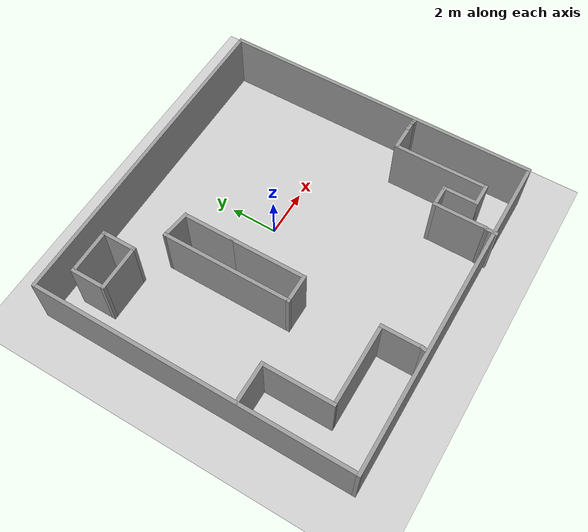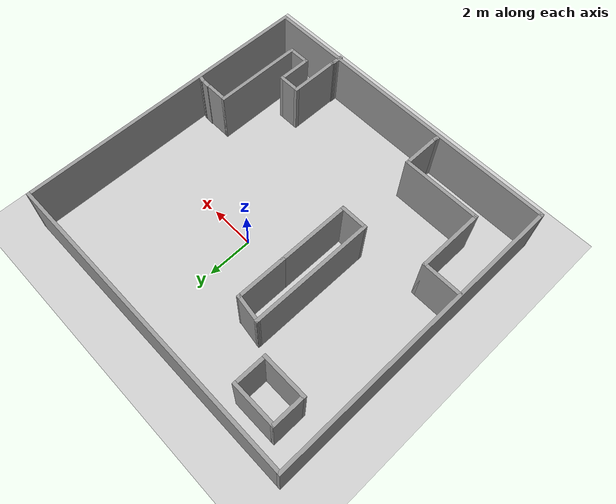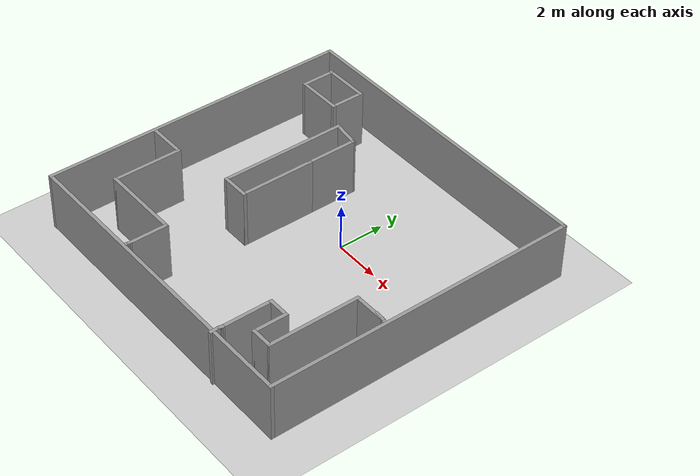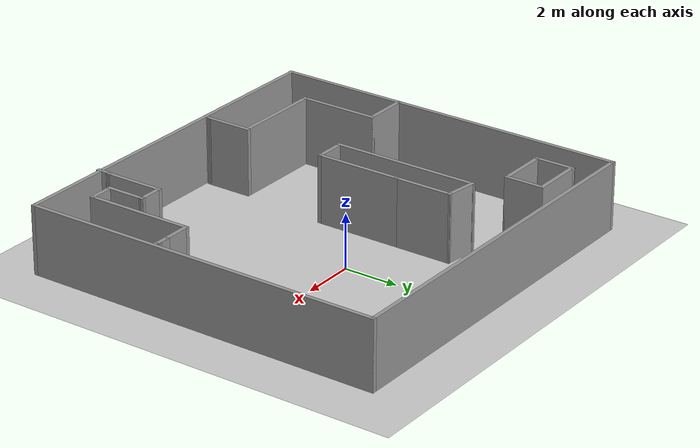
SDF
<sdf version="1.7">
 <world name="default">
  <light name="sun" type="directional">
   <pose>0 0 10 0 -0 0</pose>
   <diffuse>0.8 0.8 0.8 1</diffuse>
   <specular>0.2 0.2 0.2 1</specular>
   <attenuation>
    <range>1000</range>
    <constant>0.9</constant>
    <linear>0.01</linear>
    <quadratic>0.001</quadratic>
   </attenuation>
   <direction>-0.5 0.1 -0.9</direction>
   <spot><inner_angle>0</inner_angle><outer_angle>0</outer_angle><falloff>0</falloff></spot>
  </light>
  <model name="ground_plane">
   <static>1</static>
   <link name="link">
    <collision name="collision">
     <geometry><plane><normal>0 0 1</normal><size>100 100</size></plane></geometry>
     <surface><friction><ode><mu>100</mu><mu2>50</mu2></ode></friction></surface>
    </collision>
    <visual name="visual">
     <cast_shadows>0</cast_shadows>
     <geometry><plane><normal>0 0 1</normal><size>100 100</size></plane></geometry>
     <material>
      <script><uri>file://media/materials/scripts/gazebo.material</uri><name>Gazebo/Grey</name></script>
     </material>
    </visual>
   </link>
  </model>
  <gravity>0 0 -9.8</gravity>
  <magnetic_field>6e-06 2.3e-05 -4.2e-05</magnetic_field>
  <atmosphere type="adiabatic"/>
  <physics type="ode">
   <max_step_size>0.001</max_step_size>
   <real_time_factor>1</real_time_factor>
   <real_time_update_rate>1000</real_time_update_rate>
  </physics>
  <scene><ambient>0.4 0.4 0.4 1</ambient><background>0.7 0.7 0.7 1</background><shadows>1</shadows></scene>
  <audio><device>default</device></audio>
  <spherical_coordinates>
   <surface_model>EARTH_WGS84</surface_model>
   <latitude_deg>0</latitude_deg>
   <longitude_deg>0</longitude_deg>
   <elevation>0</elevation>
   <heading_deg>0</heading_deg>
  </spherical_coordinates>
  <model name="model">
   <pose>-0.715286 -1.27046 0 0 -0 0</pose>
   <link name="Wall_20">
    <collision name="Wall_20_Collision">
     <geometry><box><size>14 0.15 2.5</size></box></geometry>
     <pose>0 0 1.25 0 -0 0</pose>
    </collision>
    <visual name="Wall_20_Visual">
     <pose>0 0 1.25 0 -0 0</pose>
     <geometry><box><size>14 0.15 2.5</size></box></geometry>
     <material>
      <script><uri>file://media/materials/scripts/gazebo.material</uri><name>Gazebo/Grey</name></script>
      <ambient>1 1 1 1</ambient>
     </material>
     <meta><layer>0</layer></meta>
    </visual>
    <pose>0 6.71182 0 0 -0 0</pose>
   </link>
   <link name="Wall_21">
    <collision name="Wall_21_Collision">
     <geometry><box><size>13.5 0.15 2.5</size></box></geometry>
     <pose>0 0 1.25 0 -0 0</pose>
    </collision>
    <visual name="Wall_21_Visual">
     <pose>0 0 1.25 0 -0 0</pose>
     <geometry><box><size>13.5 0.15 2.5</size></box></geometry>
     <material>
      <script><uri>file://media/materials/scripts/gazebo.material</uri><name>Gazebo/Grey</name></script>
      <ambient>1 1 1 1</ambient>
     </material>
     <meta><layer>0</layer></meta>
    </visual>
    <pose>6.925 0.036821 0 0 -0 -1.5708</pose>
   </link>
   <link name="Wall_22">
    <collision name="Wall_22_Collision">
     <geometry><box><size>14 0.15 2.5</size></box></geometry>
     <pose>0 0 1.25 0 -0 0</pose>
    </collision>
    <visual name="Wall_22_Visual">
     <pose>0 0 1.25 0 -0 0</pose>
     <geometry><box><size>14 0.15 2.5</size></box></geometry>
     <material>
      <script><uri>file://media/materials/scripts/gazebo.material</uri><name>Gazebo/Grey</name></script>
      <ambient>1 1 1 1</ambient>
     </material>
     <meta><layer>0</layer></meta>
    </visual>
    <pose>0 -6.63818 0 0 -0 3.14159</pose>
   </link>
   <link name="Wall_23">
    <collision name="Wall_23_Collision">
     <geometry><box><size>13.5 0.15 2.5</size></box></geometry>
     <pose>0 0 1.25 0 -0 0</pose>
    </collision>
    <visual name="Wall_23_Visual">
     <pose>0 0 1.25 0 -0 0</pose>
     <geometry><box><size>13.5 0.15 2.5</size></box></geometry>
     <material>
      <script><uri>file://media/materials/scripts/gazebo.material</uri><name>Gazebo/Grey</name></script>
      <ambient>1 1 1 1</ambient>
     </material>
     <meta><layer>0</layer></meta>
    </visual>
    <pose>-6.925 0.036821 0 0 -0 1.5708</pose>
   </link>
   <link name="Wall_25">
    <collision name="Wall_25_Collision">
     <geometry><box><size>1.5 0.15 2.5</size></box></geometry>
     <pose>0 0 1.25 0 -0 0</pose>
    </collision>
    <visual name="Wall_25_Visual">
     <pose>0 0 1.25 0 -0 0</pose>
     <geometry><box><size>1.5 0.15 2.5</size></box></geometry>
     <material>
      <script><uri>file://media/materials/scripts/gazebo.material</uri><name>Gazebo/Grey</name></script>
      <ambient>1 1 1 1</ambient>
     </material>
     <meta><layer>0</layer></meta>
    </visual>
    <pose>-3.87343 5.18881 0 0 -0 -1.5708</pose>
   </link>
   <link name="Wall_26">
    <collision name="Wall_26_Collision">
     <geometry><box><size>2 0.15 2.5</size></box></geometry>
     <pose>0 0 1.25 0 -0 0</pose>
    </collision>
    <visual name="Wall_26_Visual">
     <pose>0 0 1.25 0 -0 0</pose>
     <geometry><box><size>2 0.15 2.5</size></box></geometry>
     <material>
      <script><uri>file://media/materials/scripts/gazebo.material</uri><name>Gazebo/Grey</name></script>
      <ambient>1 1 1 1</ambient>
     </material>
     <meta><layer>0</layer></meta>
    </visual>
    <pose>-4.79843 4.51382 0 0 -0 3.14159</pose>
   </link>
   <link name="Wall_27">
    <collision name="Wall_27_Collision">
     <geometry><box><size>1.5 0.15 2.5</size></box></geometry>
     <pose>0 0 1.25 0 -0 0</pose>
    </collision>
    <visual name="Wall_27_Visual">
     <pose>0 0 1.25 0 -0 0</pose>
     <geometry><box><size>1.5 0.15 2.5</size></box></geometry>
     <material>
      <script><uri>file://media/materials/scripts/gazebo.material</uri><name>Gazebo/Grey</name></script>
      <ambient>1 1 1 1</ambient>
     </material>
     <meta><layer>0</layer></meta>
    </visual>
    <pose>-5.72343 5.18881 0 0 -0 1.5708</pose>
   </link>
   <link name="Wall_28">
    <collision name="Wall_28_Collision">
     <geometry><box><size>2 0.15 2.5</size></box></geometry>
     <pose>0 0 1.25 0 -0 0</pose>
    </collision>
    <visual name="Wall_28_Visual">
     <pose>0 0 1.25 0 -0 0</pose>
     <geometry><box><size>2 0.15 2.5</size></box></geometry>
     <material>
      <script><uri>file://media/materials/scripts/gazebo.material</uri><name>Gazebo/Grey</name></script>
      <ambient>1 1 1 1</ambient>
     </material>
     <meta><layer>0</layer></meta>
    </visual>
    <pose>-4.79843 5.86381 0 0 -0 0</pose>
   </link>
   <link name="Wall_30">
    <collision name="Wall_30_Collision">
     <geometry><box><size>1.75 0.15 2.5</size></box></geometry>
     <pose>0 0 1.25 0 -0 0</pose>
    </collision>
    <visual name="Wall_30_Visual">
     <pose>0 0 1.25 0 -0 0</pose>
     <geometry><box><size>1.75 0.15 2.5</size></box></geometry>
     <material>
      <script><uri>file://media/materials/scripts/gazebo.material</uri><name>Gazebo/Grey</name></script>
      <ambient>1 1 1 1</ambient>
     </material>
     <meta><layer>0</layer></meta>
    </visual>
    <pose>-6.0883 -1.95023 0 0 -0 0</pose>
   </link>
   <link name="Wall_31">
    <collision name="Wall_31_Collision">
     <geometry><box><size>3 0.15 2.5</size></box></geometry>
     <pose>0 0 1.25 0 -0 0</pose>
    </collision>
    <visual name="Wall_31_Visual">
     <pose>0 0 1.25 0 -0 0</pose>
     <geometry><box><size>3 0.15 2.5</size></box></geometry>
     <material>
      <script><uri>file://media/materials/scripts/gazebo.material</uri><name>Gazebo/Grey</name></script>
      <ambient>1 1 1 1</ambient>
     </material>
     <meta><layer>0</layer></meta>
    </visual>
    <pose>-5.2883 -3.37523 0 0 -0 -1.5708</pose>
   </link>
   <link name="Wall_32">
    <collision name="Wall_32_Collision">
     <geometry><box><size>3.5 0.15 2.5</size></box></geometry>
     <pose>0 0 1.25 0 -0 0</pose>
    </collision>
    <visual name="Wall_32_Visual">
     <pose>0 0 1.25 0 -0 0</pose>
     <geometry><box><size>3.5 0.15 2.5</size></box></geometry>
     <material>
      <script><uri>file://media/materials/scripts/gazebo.material</uri><name>Gazebo/Grey</name></script>
      <ambient>1 1 1 1</ambient>
     </material>
     <meta><layer>0</layer></meta>
    </visual>
    <pose>-3.6133 -4.80023 0 0 -0 0</pose>
   </link>
   <link name="Wall_33">
    <collision name="Wall_33_Collision">
     <geometry><box><size>1.75 0.15 2.5</size></box></geometry>
     <pose>0 0 1.25 0 -0 0</pose>
    </collision>
    <visual name="Wall_33_Visual">
     <pose>0 0 1.25 0 -0 0</pose>
     <geometry><box><size>1.75 0.15 2.5</size></box></geometry>
     <material>
      <script><uri>file://media/materials/scripts/gazebo.material</uri><name>Gazebo/Grey</name></script>
      <ambient>1 1 1 1</ambient>
     </material>
     <meta><layer>0</layer></meta>
    </visual>
    <pose>-1.9383 -5.60023 0 0 -0 -1.5708</pose>
   </link>
   <link name="Wall_34">
    <collision name="Wall_34_Collision">
     <geometry><box><size>0.25 0.15 2.5</size></box></geometry>
     <pose>0 0 1.25 0 -0 0</pose>
    </collision>
    <visual name="Wall_34_Visual">
     <pose>0 0 1.25 0 -0 0</pose>
     <geometry><box><size>0.25 0.15 2.5</size></box></geometry>
     <material>
      <script><uri>file://media/materials/scripts/gazebo.material</uri><name>Gazebo/Grey</name></script>
      <ambient>1 1 1 1</ambient>
     </material>
     <meta><layer>0</layer></meta>
    </visual>
    <pose>-1.95124 -6.44852 0 0 -0 -1.8326</pose>
   </link>
   <link name="Wall_36">
    <collision name="Wall_36_Collision">
     <geometry><box><size>1 0.15 2.5</size></box></geometry>
     <pose>0 0 1.25 0 -0 0</pose>
    </collision>
    <visual name="Wall_36_Visual">
     <pose>0 0 1.25 0 -0 0</pose>
     <geometry><box><size>1 0.15 2.5</size></box></geometry>
     <material>
      <script><uri>file://media/materials/scripts/gazebo.material</uri><name>Gazebo/Grey</name></script>
      <ambient>1 1 1 1</ambient>
     </material>
     <meta><layer>0</layer></meta>
    </visual>
    <pose>4.05797 -4.16523 0 0 -0 0</pose>
   </link>
   <link name="Wall_37">
    <collision name="Wall_37_Collision">
     <geometry><box><size>1.5 0.15 2.5</size></box></geometry>
     <pose>0 0 1.25 0 -0 0</pose>
    </collision>
    <visual name="Wall_37_Visual">
     <pose>0 0 1.25 0 -0 0</pose>
     <geometry><box><size>1.5 0.15 2.5</size></box></geometry>
     <material>
      <script><uri>file://media/materials/scripts/gazebo.material</uri><name>Gazebo/Grey</name></script>
      <ambient>1 1 1 1</ambient>
     </material>
     <meta><layer>0</layer></meta>
    </visual>
    <pose>4.48297 -4.84023 0 0 -0 -1.5708</pose>
   </link>
   <link name="Wall_38">
    <collision name="Wall_38_Collision">
     <geometry><box><size>1 0.15 2.5</size></box></geometry>
     <pose>0 0 1.25 0 -0 0</pose>
    </collision>
    <visual name="Wall_38_Visual">
     <pose>0 0 1.25 0 -0 0</pose>
     <geometry><box><size>1 0.15 2.5</size></box></geometry>
     <material>
      <script><uri>file://media/materials/scripts/gazebo.material</uri><name>Gazebo/Grey</name></script>
      <ambient>1 1 1 1</ambient>
     </material>
     <meta><layer>0</layer></meta>
    </visual>
    <pose>4.90797 -5.51523 0 0 -0 0</pose>
   </link>
   <link name="Wall_39">
    <collision name="Wall_39_Collision">
     <geometry><box><size>4 0.15 2.5</size></box></geometry>
     <pose>0 0 1.25 0 -0 0</pose>
    </collision>
    <visual name="Wall_39_Visual">
     <pose>0 0 1.25 0 -0 0</pose>
     <geometry><box><size>4 0.15 2.5</size></box></geometry>
     <material>
      <script><uri>file://media/materials/scripts/gazebo.material</uri><name>Gazebo/Grey</name></script>
      <ambient>1 1 1 1</ambient>
     </material>
     <meta><layer>0</layer></meta>
    </visual>
    <pose>5.33297 -3.59023 0 0 -0 1.5708</pose>
   </link>
   <link name="Wall_40">
    <collision name="Wall_40_Collision">
     <geometry><box><size>1.5 0.15 2.5</size></box></geometry>
     <pose>0 0 1.25 0 -0 0</pose>
    </collision>
    <visual name="Wall_40_Visual">
     <pose>0 0 1.25 0 -0 0</pose>
     <geometry><box><size>1.5 0.15 2.5</size></box></geometry>
     <material>
      <script><uri>file://media/materials/scripts/gazebo.material</uri><name>Gazebo/Grey</name></script>
      <ambient>1 1 1 1</ambient>
     </material>
     <meta><layer>0</layer></meta>
    </visual>
    <pose>6.00797 -1.66523 0 0 -0 0</pose>
   </link>
   <link name="Wall_44">
    <collision name="Wall_44_Collision">
     <geometry><box><size>0.493521 0.15 2.5</size></box></geometry>
     <pose>0 0 1.25 0 -0 0</pose>
    </collision>
    <visual name="Wall_44_Visual">
     <pose>0 0 1.25 0 -0 0</pose>
     <geometry><box><size>0.493521 0.15 2.5</size></box></geometry>
     <material>
      <script><uri>file://media/materials/scripts/gazebo.material</uri><name>Gazebo/Grey</name></script>
      <ambient>1 1 1 1</ambient>
     </material>
     <meta><layer>0</layer></meta>
    </visual>
    <pose>6.51158 -1.65391 0 0 -0 -0.065962</pose>
   </link>
   <link name="Wall_45">
    <collision name="Wall_45_Collision">
     <geometry><box><size>0.25 0.15 2.5</size></box></geometry>
     <pose>0 0 1.25 0 -0 0</pose>
    </collision>
    <visual name="Wall_45_Visual">
     <pose>0 0 1.25 0 -0 0</pose>
     <geometry><box><size>0.25 0.15 2.5</size></box></geometry>
     <material>
      <script><uri>file://media/materials/scripts/gazebo.material</uri><name>Gazebo/Grey</name></script>
      <ambient>1 1 1 1</ambient>
     </material>
     <meta><layer>0</layer></meta>
    </visual>
    <pose>6.73127 -1.67817 0 0 -0 -0.261799</pose>
   </link>
   <link name="Wall_48">
    <collision name="Wall_48_Collision">
     <geometry><box><size>2.25 0.15 2.5</size></box></geometry>
     <pose>0 0 1.25 0 -0 0</pose>
    </collision>
    <visual name="Wall_48_Visual">
     <pose>0 0 1.25 0 -0 0</pose>
     <geometry><box><size>2.25 0.15 2.5</size></box></geometry>
     <material>
      <script><uri>file://media/materials/scripts/gazebo.material</uri><name>Gazebo/Grey</name></script>
      <ambient>1 1 1 1</ambient>
     </material>
     <meta><layer>0</layer></meta>
    </visual>
    <pose>3.63297 -5.21523 0 0 -0 -1.5708</pose>
   </link>
   <link name="Wall_49">
    <collision name="Wall_49_Collision">
     <geometry><box><size>0.25 0.15 2.5</size></box></geometry>
     <pose>0 0 1.25 0 -0 0</pose>
    </collision>
    <visual name="Wall_49_Visual">
     <pose>0 0 1.25 0 -0 0</pose>
     <geometry><box><size>0.25 0.15 2.5</size></box></geometry>
     <material>
      <script><uri>file://media/materials/scripts/gazebo.material</uri><name>Gazebo/Grey</name></script>
      <ambient>1 1 1 1</ambient>
     </material>
     <meta><layer>0</layer></meta>
    </visual>
    <pose>3.62003 -6.31353 0 0 -0 -1.8326</pose>
   </link>
   <link name="Wall_50">
    <collision name="Wall_50_Collision">
     <geometry><box><size>0.5 0.15 2.5</size></box></geometry>
     <pose>0 0 1.25 0 -0 0</pose>
    </collision>
    <visual name="Wall_50_Visual">
     <pose>0 0 1.25 0 -0 0</pose>
     <geometry><box><size>0.5 0.15 2.5</size></box></geometry>
     <material>
      <script><uri>file://media/materials/scripts/gazebo.material</uri><name>Gazebo/Grey</name></script>
      <ambient>1 1 1 1</ambient>
     </material>
     <meta><layer>0</layer></meta>
    </visual>
    <pose>3.60709 -6.53682 0 0 -0 -1.5708</pose>
   </link>
   <link name="Wall_53">
    <collision name="Wall_53_Collision">
     <geometry><box><size>2.25 0.15 2.5</size></box></geometry>
     <pose>0 0 1.25 0 -0 0</pose>
    </collision>
    <visual name="Wall_53_Visual">
     <pose>0 0 1.25 0 -0 0</pose>
     <geometry><box><size>2.25 0.15 2.5</size></box></geometry>
     <material>
      <script><uri>file://media/materials/scripts/gazebo.material</uri><name>Gazebo/Grey</name></script>
      <ambient>1 1 1 1</ambient>
     </material>
     <meta><layer>0</layer></meta>
    </visual>
    <pose>-1.65843 2.66034 0 0 -0 -1.5708</pose>
   </link>
   <link name="Wall_54">
    <collision name="Wall_54_Collision">
     <geometry><box><size>3.25 0.15 2.5</size></box></geometry>
     <pose>0 0 1.25 0 -0 0</pose>
    </collision>
    <visual name="Wall_54_Visual">
     <pose>0 0 1.25 0 -0 0</pose>
     <geometry><box><size>3.25 0.15 2.5</size></box></geometry>
     <material>
      <script><uri>file://media/materials/scripts/gazebo.material</uri><name>Gazebo/Grey</name></script>
      <ambient>1 1 1 1</ambient>
     </material>
     <meta><layer>0</layer></meta>
    </visual>
    <pose>-1.65843 0.060339 0 0 -0 -1.5708</pose>
   </link>
   <link name="Wall_55">
    <collision name="Wall_55_Collision">
     <geometry><box><size>1.25 0.15 2.5</size></box></geometry>
     <pose>0 0 1.25 0 -0 0</pose>
    </collision>
    <visual name="Wall_55_Visual">
     <pose>0 0 1.25 0 -0 0</pose>
     <geometry><box><size>1.25 0.15 2.5</size></box></geometry>
     <material>
      <script><uri>file://media/materials/scripts/gazebo.material</uri><name>Gazebo/Grey</name></script>
      <ambient>1 1 1 1</ambient>
     </material>
     <meta><layer>0</layer></meta>
    </visual>
    <pose>-2.20843 -1.48966 0 0 -0 3.14159</pose>
   </link>
   <link name="Wall_56">
    <collision name="Wall_56_Collision">
     <geometry><box><size>5.5 0.15 2.5</size></box></geometry>
     <pose>0 0 1.25 0 -0 0</pose>
    </collision>
    <visual name="Wall_56_Visual">
     <pose>0 0 1.25 0 -0 0</pose>
     <geometry><box><size>5.5 0.15 2.5</size></box></geometry>
     <material>
      <script><uri>file://media/materials/scripts/gazebo.material</uri><name>Gazebo/Grey</name></script>
      <ambient>1 1 1 1</ambient>
     </material>
     <meta><layer>0</layer></meta>
    </visual>
    <pose>-2.75843 1.18534 0 0 -0 1.5708</pose>
   </link>
   <link name="Wall_57">
    <collision name="Wall_57_Collision">
     <geometry><box><size>1.26018 0.15 2.5</size></box></geometry>
     <pose>0 0 1.25 0 -0 0</pose>
    </collision>
    <visual name="Wall_57_Visual">
     <pose>0 0 1.25 0 -0 0</pose>
     <geometry><box><size>1.26018 0.15 2.5</size></box></geometry>
     <material>
      <script><uri>file://media/materials/scripts/gazebo.material</uri><name>Gazebo/Grey</name></script>
      <ambient>1 1 1 1</ambient>
     </material>
     <meta><layer>0</layer></meta>
    </visual>
    <pose>-2.20843 3.78534 0 0 -0 -0.135528</pose>
   </link>
   <static>1</static>
  </model>
 </world>
</sdf>
